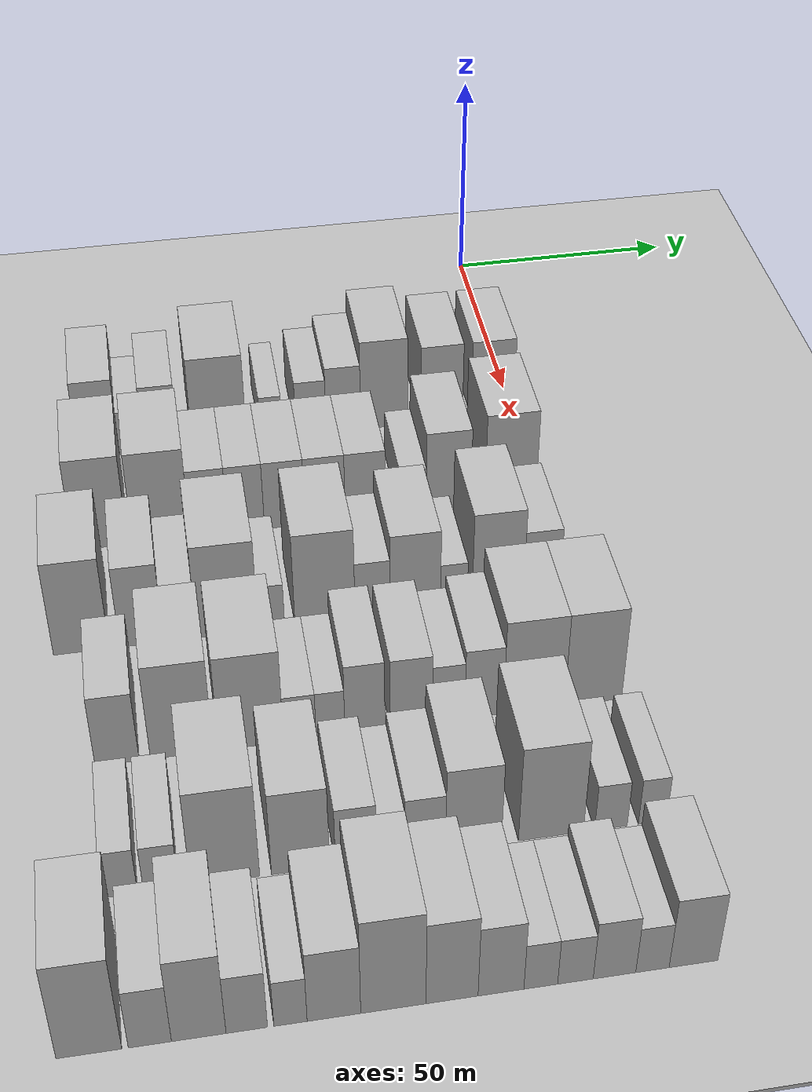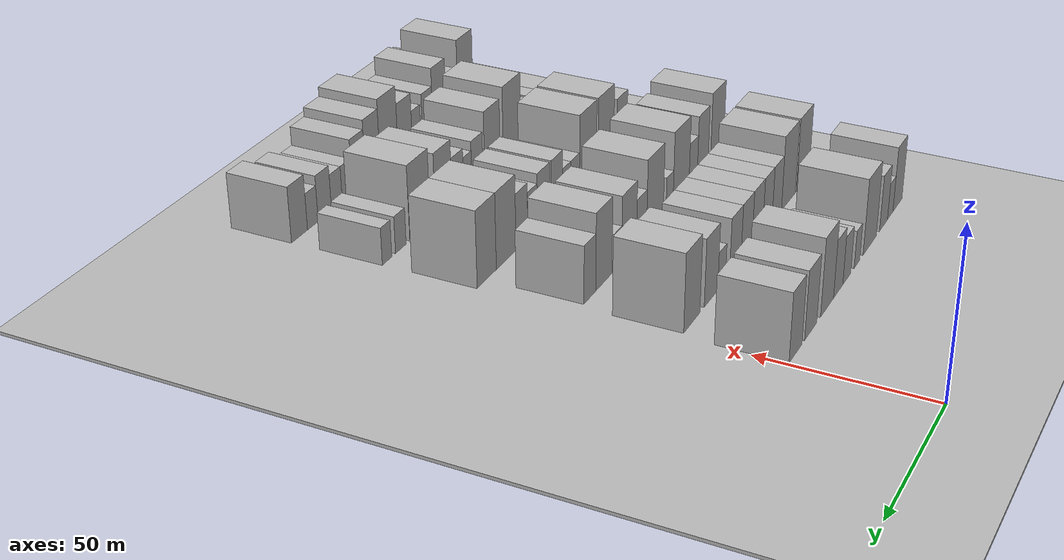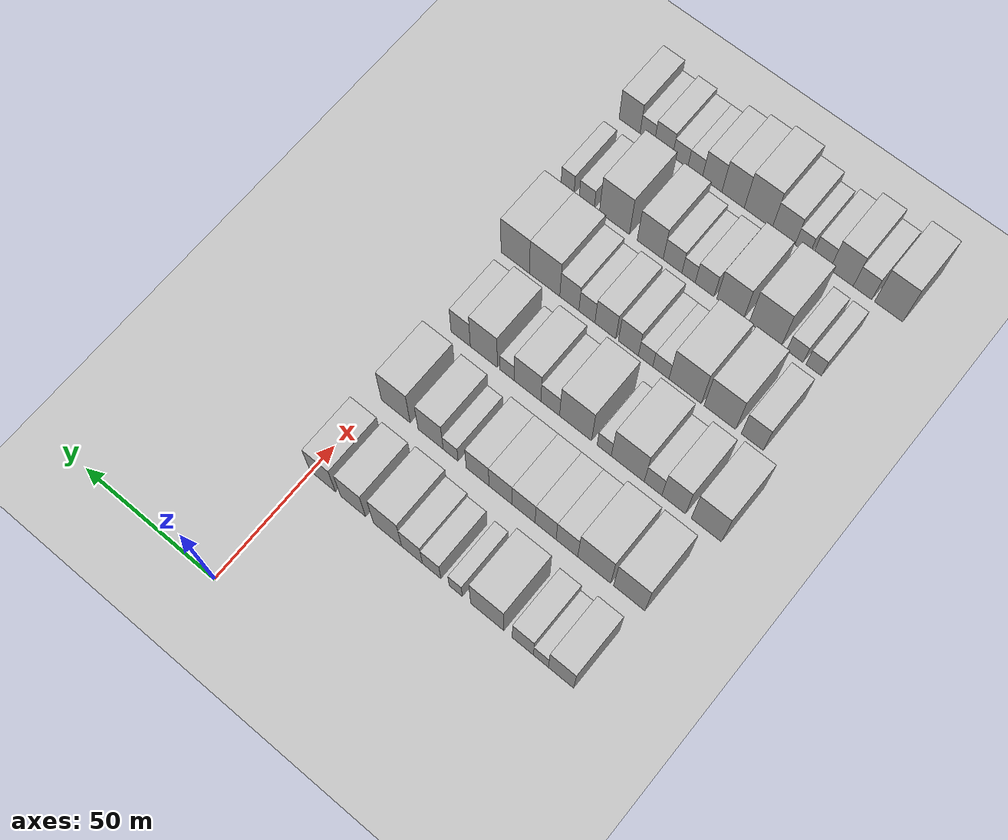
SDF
<sdf version="1.6">
 <world name="default">
  <include><name>ground_plane_1</name><uri>model://HANNAS_ground_plane</uri></include>
  <include>
   <name>ground_plane_2</name>
   <uri>model://HANNAS_ground_plane</uri>
   <pose>100 0 0  0 0 0</pose>
  </include>
  <model name="building_46">
   <static>1</static>
   <pose>50.0000 -91.5017 0 0.000000 0.000000 0.000000</pose>
   <link name="link">
    <pose>0 0 10.50 0 0 0</pose>
    <collision name="collision"><geometry><box><size>20.0000 8.8281 21.0000</size></box></geometry></collision>
    <visual name="visual">
     <cast_shadows>0</cast_shadows>
     <geometry><box><size>20.0000 8.8281 21.0000</size></box></geometry>
     <material>
      <script>
       <uri>model://HANNAS_wall/materials/scripts</uri>
       <uri>model://HANNAS_wall/materials/textures</uri>
       <name>vrc/HANNAS_wall</name>
      </script>
     </material>
    </visual>
   </link>
  </model>
  <model name="building_47">
   <static>1</static>
   <pose>50.0000 -84.4650 0 0.000000 0.000000 0.000000</pose>
   <link name="link">
    <pose>0 0 6.00 0 0 0</pose>
    <collision name="collision"><geometry><box><size>20.0000 5.2453 12.0000</size></box></geometry></collision>
    <visual name="visual">
     <cast_shadows>0</cast_shadows>
     <geometry><box><size>20.0000 5.2453 12.0000</size></box></geometry>
     <material>
      <script>
       <uri>model://HANNAS_wall/materials/scripts</uri>
       <uri>model://HANNAS_wall/materials/textures</uri>
       <name>vrc/HANNAS_wall</name>
      </script>
     </material>
    </visual>
   </link>
  </model>
  <model name="building_48">
   <static>1</static>
   <pose>50.0000 -78.1030 0 0.000000 0.000000 0.000000</pose>
   <link name="link">
    <pose>0 0 9.00 0 0 0</pose>
    <collision name="collision"><geometry><box><size>20.0000 7.4789 18.0000</size></box></geometry></collision>
    <visual name="visual">
     <cast_shadows>0</cast_shadows>
     <geometry><box><size>20.0000 7.4789 18.0000</size></box></geometry>
     <material>
      <script>
       <uri>model://HANNAS_wall/materials/scripts</uri>
       <uri>model://HANNAS_wall/materials/textures</uri>
       <name>vrc/HANNAS_wall</name>
      </script>
     </material>
    </visual>
   </link>
  </model>
  <model name="building_49">
   <static>1</static>
   <pose>50.0000 -65.4088 0 0.000000 0.000000 0.000000</pose>
   <link name="link">
    <pose>0 0 12.00 0 0 0</pose>
    <collision name="collision"><geometry><box><size>20.0000 11.9094 24.0000</size></box></geometry></collision>
    <visual name="visual">
     <cast_shadows>0</cast_shadows>
     <geometry><box><size>20.0000 11.9094 24.0000</size></box></geometry>
     <material>
      <script>
       <uri>model://HANNAS_wall/materials/scripts</uri>
       <uri>model://HANNAS_wall/materials/textures</uri>
       <name>vrc/HANNAS_wall</name>
      </script>
     </material>
    </visual>
   </link>
  </model>
  <model name="building_50">
   <static>1</static>
   <pose>50.0000 -54.0508 0 0.000000 0.000000 0.000000</pose>
   <link name="link">
    <pose>0 0 6.00 0 0 0</pose>
    <collision name="collision"><geometry><box><size>20.0000 4.8067 12.0000</size></box></geometry></collision>
    <visual name="visual">
     <cast_shadows>0</cast_shadows>
     <geometry><box><size>20.0000 4.8067 12.0000</size></box></geometry>
     <material>
      <script>
       <uri>model://HANNAS_wall/materials/scripts</uri>
       <uri>model://HANNAS_wall/materials/textures</uri>
       <name>vrc/HANNAS_wall</name>
      </script>
     </material>
    </visual>
   </link>
  </model>
  <model name="building_51">
   <static>1</static>
   <pose>50.0000 -45.2956 0 0.000000 0.000000 0.000000</pose>
   <link name="link">
    <pose>0 0 7.50 0 0 0</pose>
    <collision name="collision"><geometry><box><size>20.0000 6.7038 15.0000</size></box></geometry></collision>
    <visual name="visual">
     <cast_shadows>0</cast_shadows>
     <geometry><box><size>20.0000 6.7038 15.0000</size></box></geometry>
     <material>
      <script>
       <uri>model://HANNAS_wall/materials/scripts</uri>
       <uri>model://HANNAS_wall/materials/textures</uri>
       <name>vrc/HANNAS_wall</name>
      </script>
     </material>
    </visual>
   </link>
  </model>
  <model name="building_52">
   <static>1</static>
   <pose>50.0000 -38.1109 0 0.000000 0.000000 0.000000</pose>
   <link name="link">
    <pose>0 0 9.00 0 0 0</pose>
    <collision name="collision"><geometry><box><size>20.0000 7.6656 18.0000</size></box></geometry></collision>
    <visual name="visual">
     <cast_shadows>0</cast_shadows>
     <geometry><box><size>20.0000 7.6656 18.0000</size></box></geometry>
     <material>
      <script>
       <uri>model://HANNAS_wall/materials/scripts</uri>
       <uri>model://HANNAS_wall/materials/textures</uri>
       <name>vrc/HANNAS_wall</name>
      </script>
     </material>
    </visual>
   </link>
  </model>
  <model name="building_53">
   <static>1</static>
   <pose>50.0000 -29.0440 0 0.000000 0.000000 0.000000</pose>
   <link name="link">
    <pose>0 0 12.00 0 0 0</pose>
    <collision name="collision"><geometry><box><size>20.0000 10.4682 24.0000</size></box></geometry></collision>
    <visual name="visual">
     <cast_shadows>0</cast_shadows>
     <geometry><box><size>20.0000 10.4682 24.0000</size></box></geometry>
     <material>
      <script>
       <uri>model://HANNAS_wall/materials/scripts</uri>
       <uri>model://HANNAS_wall/materials/textures</uri>
       <name>vrc/HANNAS_wall</name>
      </script>
     </material>
    </visual>
   </link>
  </model>
  <model name="building_54">
   <static>1</static>
   <pose>50.0000 -16.1434 0 0.000000 0.000000 0.000000</pose>
   <link name="link">
    <pose>0 0 10.50 0 0 0</pose>
    <collision name="collision"><geometry><box><size>20.0000 9.3330 21.0000</size></box></geometry></collision>
    <visual name="visual">
     <cast_shadows>0</cast_shadows>
     <geometry><box><size>20.0000 9.3330 21.0000</size></box></geometry>
     <material>
      <script>
       <uri>model://HANNAS_wall/materials/scripts</uri>
       <uri>model://HANNAS_wall/materials/textures</uri>
       <name>vrc/HANNAS_wall</name>
      </script>
     </material>
    </visual>
   </link>
  </model>
  <model name="building_55">
   <static>1</static>
   <pose>50.0000 -4.6603 0 0.000000 0.000000 0.000000</pose>
   <link name="link">
    <pose>0 0 10.50 0 0 0</pose>
    <collision name="collision"><geometry><box><size>20.0000 9.6333 21.0000</size></box></geometry></collision>
    <visual name="visual">
     <cast_shadows>0</cast_shadows>
     <geometry><box><size>20.0000 9.6333 21.0000</size></box></geometry>
     <material>
      <script>
       <uri>model://HANNAS_wall/materials/scripts</uri>
       <uri>model://HANNAS_wall/materials/textures</uri>
       <name>vrc/HANNAS_wall</name>
      </script>
     </material>
    </visual>
   </link>
  </model>
  <model name="building_159">
   <static>1</static>
   <pose>79.0000 -92.3467 0 0.000000 0.000000 0.000000</pose>
   <link name="link">
    <pose>0 0 12.00 0 0 0</pose>
    <collision name="collision"><geometry><box><size>20.0000 11.0734 24.0000</size></box></geometry></collision>
    <visual name="visual">
     <cast_shadows>0</cast_shadows>
     <geometry><box><size>20.0000 11.0734 24.0000</size></box></geometry>
     <material>
      <script>
       <uri>model://HANNAS_wall/materials/scripts</uri>
       <uri>model://HANNAS_wall/materials/textures</uri>
       <name>vrc/HANNAS_wall</name>
      </script>
     </material>
    </visual>
   </link>
  </model>
  <model name="building_160">
   <static>1</static>
   <pose>79.0000 -79.9539 0 0.000000 0.000000 0.000000</pose>
   <link name="link">
    <pose>0 0 12.00 0 0 0</pose>
    <collision name="collision"><geometry><box><size>20.0000 11.7122 24.0000</size></box></geometry></collision>
    <visual name="visual">
     <cast_shadows>0</cast_shadows>
     <geometry><box><size>20.0000 11.7122 24.0000</size></box></geometry>
     <material>
      <script>
       <uri>model://HANNAS_wall/materials/scripts</uri>
       <uri>model://HANNAS_wall/materials/textures</uri>
       <name>vrc/HANNAS_wall</name>
      </script>
     </material>
    </visual>
   </link>
  </model>
  <model name="building_161">
   <static>1</static>
   <pose>79.0000 -70.2094 0 0.000000 0.000000 0.000000</pose>
   <link name="link">
    <pose>0 0 9.00 0 0 0</pose>
    <collision name="collision"><geometry><box><size>20.0000 7.7768 18.0000</size></box></geometry></collision>
    <visual name="visual">
     <cast_shadows>0</cast_shadows>
     <geometry><box><size>20.0000 7.7768 18.0000</size></box></geometry>
     <material>
      <script>
       <uri>model://HANNAS_wall/materials/scripts</uri>
       <uri>model://HANNAS_wall/materials/textures</uri>
       <name>vrc/HANNAS_wall</name>
      </script>
     </material>
    </visual>
   </link>
  </model>
  <model name="building_162">
   <static>1</static>
   <pose>79.0000 -62.5229 0 0.000000 0.000000 0.000000</pose>
   <link name="link">
    <pose>0 0 9.00 0 0 0</pose>
    <collision name="collision"><geometry><box><size>20.0000 7.5962 18.0000</size></box></geometry></collision>
    <visual name="visual">
     <cast_shadows>0</cast_shadows>
     <geometry><box><size>20.0000 7.5962 18.0000</size></box></geometry>
     <material>
      <script>
       <uri>model://HANNAS_wall/materials/scripts</uri>
       <uri>model://HANNAS_wall/materials/textures</uri>
       <name>vrc/HANNAS_wall</name>
      </script>
     </material>
    </visual>
   </link>
  </model>
  <model name="building_163">
   <static>1</static>
   <pose>79.0000 -54.5283 0 0.000000 0.000000 0.000000</pose>
   <link name="link">
    <pose>0 0 9.00 0 0 0</pose>
    <collision name="collision"><geometry><box><size>20.0000 8.3930 18.0000</size></box></geometry></collision>
    <visual name="visual">
     <cast_shadows>0</cast_shadows>
     <geometry><box><size>20.0000 8.3930 18.0000</size></box></geometry>
     <material>
      <script>
       <uri>model://HANNAS_wall/materials/scripts</uri>
       <uri>model://HANNAS_wall/materials/textures</uri>
       <name>vrc/HANNAS_wall</name>
      </script>
     </material>
    </visual>
   </link>
  </model>
  <model name="building_164">
   <static>1</static>
   <pose>79.0000 -46.1145 0 0.000000 0.000000 0.000000</pose>
   <link name="link">
    <pose>0 0 9.00 0 0 0</pose>
    <collision name="collision"><geometry><box><size>20.0000 8.4345 18.0000</size></box></geometry></collision>
    <visual name="visual">
     <cast_shadows>0</cast_shadows>
     <geometry><box><size>20.0000 8.4345 18.0000</size></box></geometry>
     <material>
      <script>
       <uri>model://HANNAS_wall/materials/scripts</uri>
       <uri>model://HANNAS_wall/materials/textures</uri>
       <name>vrc/HANNAS_wall</name>
      </script>
     </material>
    </visual>
   </link>
  </model>
  <model name="building_165">
   <static>1</static>
   <pose>79.0000 -37.6615 0 0.000000 0.000000 0.000000</pose>
   <link name="link">
    <pose>0 0 9.00 0 0 0</pose>
    <collision name="collision"><geometry><box><size>20.0000 8.4716 18.0000</size></box></geometry></collision>
    <visual name="visual">
     <cast_shadows>0</cast_shadows>
     <geometry><box><size>20.0000 8.4716 18.0000</size></box></geometry>
     <material>
      <script>
       <uri>model://HANNAS_wall/materials/scripts</uri>
       <uri>model://HANNAS_wall/materials/textures</uri>
       <name>vrc/HANNAS_wall</name>
      </script>
     </material>
    </visual>
   </link>
  </model>
  <model name="building_166">
   <static>1</static>
   <pose>79.0000 -27.6519 0 0.000000 0.000000 0.000000</pose>
   <link name="link">
    <pose>0 0 6.00 0 0 0</pose>
    <collision name="collision"><geometry><box><size>20.0000 5.5476 12.0000</size></box></geometry></collision>
    <visual name="visual">
     <cast_shadows>0</cast_shadows>
     <geometry><box><size>20.0000 5.5476 12.0000</size></box></geometry>
     <material>
      <script>
       <uri>model://HANNAS_wall/materials/scripts</uri>
       <uri>model://HANNAS_wall/materials/textures</uri>
       <name>vrc/HANNAS_wall</name>
      </script>
     </material>
    </visual>
   </link>
  </model>
  <model name="building_167">
   <static>1</static>
   <pose>79.0000 -20.1289 0 0.000000 0.000000 0.000000</pose>
   <link name="link">
    <pose>0 0 10.50 0 0 0</pose>
    <collision name="collision"><geometry><box><size>20.0000 9.4982 21.0000</size></box></geometry></collision>
    <visual name="visual">
     <cast_shadows>0</cast_shadows>
     <geometry><box><size>20.0000 9.4982 21.0000</size></box></geometry>
     <material>
      <script>
       <uri>model://HANNAS_wall/materials/scripts</uri>
       <uri>model://HANNAS_wall/materials/textures</uri>
       <name>vrc/HANNAS_wall</name>
      </script>
     </material>
    </visual>
   </link>
  </model>
  <model name="building_168">
   <static>1</static>
   <pose>79.0000 -6.9009 0 0.000000 0.000000 0.000000</pose>
   <link name="link">
    <pose>0 0 12.00 0 0 0</pose>
    <collision name="collision"><geometry><box><size>20.0000 10.9578 24.0000</size></box></geometry></collision>
    <visual name="visual">
     <cast_shadows>0</cast_shadows>
     <geometry><box><size>20.0000 10.9578 24.0000</size></box></geometry>
     <material>
      <script>
       <uri>model://HANNAS_wall/materials/scripts</uri>
       <uri>model://HANNAS_wall/materials/textures</uri>
       <name>vrc/HANNAS_wall</name>
      </script>
     </material>
    </visual>
   </link>
  </model>
  <model name="building_270">
   <static>1</static>
   <pose>108.0000 -97.1586 0 0.000000 0.000000 0.000000</pose>
   <link name="link">
    <pose>0 0 12.00 0 0 0</pose>
    <collision name="collision"><geometry><box><size>20.0000 10.6386 24.0000</size></box></geometry></collision>
    <visual name="visual">
     <cast_shadows>0</cast_shadows>
     <geometry><box><size>20.0000 10.6386 24.0000</size></box></geometry>
     <material>
      <script>
       <uri>model://HANNAS_wall/materials/scripts</uri>
       <uri>model://HANNAS_wall/materials/textures</uri>
       <name>vrc/HANNAS_wall</name>
      </script>
     </material>
    </visual>
   </link>
  </model>
  <model name="building_271">
   <static>1</static>
   <pose>108.0000 -85.6298 0 0.000000 0.000000 0.000000</pose>
   <link name="link">
    <pose>0 0 10.50 0 0 0</pose>
    <collision name="collision"><geometry><box><size>20.0000 8.4190 21.0000</size></box></geometry></collision>
    <visual name="visual">
     <cast_shadows>0</cast_shadows>
     <geometry><box><size>20.0000 8.4190 21.0000</size></box></geometry>
     <material>
      <script>
       <uri>model://HANNAS_wall/materials/scripts</uri>
       <uri>model://HANNAS_wall/materials/textures</uri>
       <name>vrc/HANNAS_wall</name>
      </script>
     </material>
    </visual>
   </link>
  </model>
  <model name="building_272">
   <static>1</static>
   <pose>108.0000 -78.2460 0 0.000000 0.000000 0.000000</pose>
   <link name="link">
    <pose>0 0 7.50 0 0 0</pose>
    <collision name="collision"><geometry><box><size>20.0000 6.3487 15.0000</size></box></geometry></collision>
    <visual name="visual">
     <cast_shadows>0</cast_shadows>
     <geometry><box><size>20.0000 6.3487 15.0000</size></box></geometry>
     <material>
      <script>
       <uri>model://HANNAS_wall/materials/scripts</uri>
       <uri>model://HANNAS_wall/materials/textures</uri>
       <name>vrc/HANNAS_wall</name>
      </script>
     </material>
    </visual>
   </link>
  </model>
  <model name="building_273">
   <static>1</static>
   <pose>108.0000 -69.1006 0 0.000000 0.000000 0.000000</pose>
   <link name="link">
    <pose>0 0 12.00 0 0 0</pose>
    <collision name="collision"><geometry><box><size>20.0000 11.9419 24.0000</size></box></geometry></collision>
    <visual name="visual">
     <cast_shadows>0</cast_shadows>
     <geometry><box><size>20.0000 11.9419 24.0000</size></box></geometry>
     <material>
      <script>
       <uri>model://HANNAS_wall/materials/scripts</uri>
       <uri>model://HANNAS_wall/materials/textures</uri>
       <name>vrc/HANNAS_wall</name>
      </script>
     </material>
    </visual>
   </link>
  </model>
  <model name="building_274">
   <static>1</static>
   <pose>108.0000 -60.5538 0 0.000000 0.000000 0.000000</pose>
   <link name="link">
    <pose>0 0 6.00 0 0 0</pose>
    <collision name="collision"><geometry><box><size>20.0000 5.1518 12.0000</size></box></geometry></collision>
    <visual name="visual">
     <cast_shadows>0</cast_shadows>
     <geometry><box><size>20.0000 5.1518 12.0000</size></box></geometry>
     <material>
      <script>
       <uri>model://HANNAS_wall/materials/scripts</uri>
       <uri>model://HANNAS_wall/materials/textures</uri>
       <name>vrc/HANNAS_wall</name>
      </script>
     </material>
    </visual>
   </link>
  </model>
  <model name="building_275">
   <static>1</static>
   <pose>108.0000 -50.0670 0 0.000000 0.000000 0.000000</pose>
   <link name="link">
    <pose>0 0 12.00 0 0 0</pose>
    <collision name="collision"><geometry><box><size>20.0000 11.8216 24.0000</size></box></geometry></collision>
    <visual name="visual">
     <cast_shadows>0</cast_shadows>
     <geometry><box><size>20.0000 11.8216 24.0000</size></box></geometry>
     <material>
      <script>
       <uri>model://HANNAS_wall/materials/scripts</uri>
       <uri>model://HANNAS_wall/materials/textures</uri>
       <name>vrc/HANNAS_wall</name>
      </script>
     </material>
    </visual>
   </link>
  </model>
  <model name="building_276">
   <static>1</static>
   <pose>108.0000 -40.6836 0 0.000000 0.000000 0.000000</pose>
   <link name="link">
    <pose>0 0 7.50 0 0 0</pose>
    <collision name="collision"><geometry><box><size>20.0000 6.9452 15.0000</size></box></geometry></collision>
    <visual name="visual">
     <cast_shadows>0</cast_shadows>
     <geometry><box><size>20.0000 6.9452 15.0000</size></box></geometry>
     <material>
      <script>
       <uri>model://HANNAS_wall/materials/scripts</uri>
       <uri>model://HANNAS_wall/materials/textures</uri>
       <name>vrc/HANNAS_wall</name>
      </script>
     </material>
    </visual>
   </link>
  </model>
  <model name="building_277">
   <static>1</static>
   <pose>108.0000 -32.2255 0 0.000000 0.000000 0.000000</pose>
   <link name="link">
    <pose>0 0 10.50 0 0 0</pose>
    <collision name="collision"><geometry><box><size>20.0000 9.9709 21.0000</size></box></geometry></collision>
    <visual name="visual">
     <cast_shadows>0</cast_shadows>
     <geometry><box><size>20.0000 9.9709 21.0000</size></box></geometry>
     <material>
      <script>
       <uri>model://HANNAS_wall/materials/scripts</uri>
       <uri>model://HANNAS_wall/materials/textures</uri>
       <name>vrc/HANNAS_wall</name>
      </script>
     </material>
    </visual>
   </link>
  </model>
  <model name="building_278">
   <static>1</static>
   <pose>108.0000 -24.5676 0 0.000000 0.000000 0.000000</pose>
   <link name="link">
    <pose>0 0 6.00 0 0 0</pose>
    <collision name="collision"><geometry><box><size>20.0000 5.3450 12.0000</size></box></geometry></collision>
    <visual name="visual">
     <cast_shadows>0</cast_shadows>
     <geometry><box><size>20.0000 5.3450 12.0000</size></box></geometry>
     <material>
      <script>
       <uri>model://HANNAS_wall/materials/scripts</uri>
       <uri>model://HANNAS_wall/materials/textures</uri>
       <name>vrc/HANNAS_wall</name>
      </script>
     </material>
    </visual>
   </link>
  </model>
  <model name="building_279">
   <static>1</static>
   <pose>108.0000 -15.7495 0 0.000000 0.000000 0.000000</pose>
   <link name="link">
    <pose>0 0 12.00 0 0 0</pose>
    <collision name="collision"><geometry><box><size>20.0000 10.2911 24.0000</size></box></geometry></collision>
    <visual name="visual">
     <cast_shadows>0</cast_shadows>
     <geometry><box><size>20.0000 10.2911 24.0000</size></box></geometry>
     <material>
      <script>
       <uri>model://HANNAS_wall/materials/scripts</uri>
       <uri>model://HANNAS_wall/materials/textures</uri>
       <name>vrc/HANNAS_wall</name>
      </script>
     </material>
    </visual>
   </link>
  </model>
  <model name="building_280">
   <static>1</static>
   <pose>108.0000 -6.9151 0 0.000000 0.000000 0.000000</pose>
   <link name="link">
    <pose>0 0 9.00 0 0 0</pose>
    <collision name="collision"><geometry><box><size>20.0000 7.3779 18.0000</size></box></geometry></collision>
    <visual name="visual">
     <cast_shadows>0</cast_shadows>
     <geometry><box><size>20.0000 7.3779 18.0000</size></box></geometry>
     <material>
      <script>
       <uri>model://HANNAS_wall/materials/scripts</uri>
       <uri>model://HANNAS_wall/materials/textures</uri>
       <name>vrc/HANNAS_wall</name>
      </script>
     </material>
    </visual>
   </link>
  </model>
  <model name="building_377">
   <static>1</static>
   <pose>137.0000 -91.7214 0 0.000000 0.000000 0.000000</pose>
   <link name="link">
    <pose>0 0 9.00 0 0 0</pose>
    <collision name="collision"><geometry><box><size>20.0000 7.8928 18.0000</size></box></geometry></collision>
    <visual name="visual">
     <cast_shadows>0</cast_shadows>
     <geometry><box><size>20.0000 7.8928 18.0000</size></box></geometry>
     <material>
      <script>
       <uri>model://HANNAS_wall/materials/scripts</uri>
       <uri>model://HANNAS_wall/materials/textures</uri>
       <name>vrc/HANNAS_wall</name>
      </script>
     </material>
    </visual>
   </link>
  </model>
  <model name="building_378">
   <static>1</static>
   <pose>137.0000 -80.0980 0 0.000000 0.000000 0.000000</pose>
   <link name="link">
    <pose>0 0 12.00 0 0 0</pose>
    <collision name="collision"><geometry><box><size>20.0000 11.3541 24.0000</size></box></geometry></collision>
    <visual name="visual">
     <cast_shadows>0</cast_shadows>
     <geometry><box><size>20.0000 11.3541 24.0000</size></box></geometry>
     <material>
      <script>
       <uri>model://HANNAS_wall/materials/scripts</uri>
       <uri>model://HANNAS_wall/materials/textures</uri>
       <name>vrc/HANNAS_wall</name>
      </script>
     </material>
    </visual>
   </link>
  </model>
  <model name="building_379">
   <static>1</static>
   <pose>137.0000 -67.5205 0 0.000000 0.000000 0.000000</pose>
   <link name="link">
    <pose>0 0 12.00 0 0 0</pose>
    <collision name="collision"><geometry><box><size>20.0000 11.8009 24.0000</size></box></geometry></collision>
    <visual name="visual">
     <cast_shadows>0</cast_shadows>
     <geometry><box><size>20.0000 11.8009 24.0000</size></box></geometry>
     <material>
      <script>
       <uri>model://HANNAS_wall/materials/scripts</uri>
       <uri>model://HANNAS_wall/materials/textures</uri>
       <name>vrc/HANNAS_wall</name>
      </script>
     </material>
    </visual>
   </link>
  </model>
  <model name="building_380">
   <static>1</static>
   <pose>137.0000 -58.6394 0 0.000000 0.000000 0.000000</pose>
   <link name="link">
    <pose>0 0 6.00 0 0 0</pose>
    <collision name="collision"><geometry><box><size>20.0000 5.9612 12.0000</size></box></geometry></collision>
    <visual name="visual">
     <cast_shadows>0</cast_shadows>
     <geometry><box><size>20.0000 5.9612 12.0000</size></box></geometry>
     <material>
      <script>
       <uri>model://HANNAS_wall/materials/scripts</uri>
       <uri>model://HANNAS_wall/materials/textures</uri>
       <name>vrc/HANNAS_wall</name>
      </script>
     </material>
    </visual>
   </link>
  </model>
  <model name="building_381">
   <static>1</static>
   <pose>137.0000 -53.0052 0 0.000000 0.000000 0.000000</pose>
   <link name="link">
    <pose>0 0 6.00 0 0 0</pose>
    <collision name="collision"><geometry><box><size>20.0000 5.3072 12.0000</size></box></geometry></collision>
    <visual name="visual">
     <cast_shadows>0</cast_shadows>
     <geometry><box><size>20.0000 5.3072 12.0000</size></box></geometry>
     <material>
      <script>
       <uri>model://HANNAS_wall/materials/scripts</uri>
       <uri>model://HANNAS_wall/materials/textures</uri>
       <name>vrc/HANNAS_wall</name>
      </script>
     </material>
    </visual>
   </link>
  </model>
  <model name="building_382">
   <static>1</static>
   <pose>137.0000 -46.6468 0 0.000000 0.000000 0.000000</pose>
   <link name="link">
    <pose>0 0 9.00 0 0 0</pose>
    <collision name="collision"><geometry><box><size>20.0000 7.4098 18.0000</size></box></geometry></collision>
    <visual name="visual">
     <cast_shadows>0</cast_shadows>
     <geometry><box><size>20.0000 7.4098 18.0000</size></box></geometry>
     <material>
      <script>
       <uri>model://HANNAS_wall/materials/scripts</uri>
       <uri>model://HANNAS_wall/materials/textures</uri>
       <name>vrc/HANNAS_wall</name>
      </script>
     </material>
    </visual>
   </link>
  </model>
  <model name="building_383">
   <static>1</static>
   <pose>137.0000 -38.0358 0 0.000000 0.000000 0.000000</pose>
   <link name="link">
    <pose>0 0 9.00 0 0 0</pose>
    <collision name="collision"><geometry><box><size>20.0000 7.8122 18.0000</size></box></geometry></collision>
    <visual name="visual">
     <cast_shadows>0</cast_shadows>
     <geometry><box><size>20.0000 7.8122 18.0000</size></box></geometry>
     <material>
      <script>
       <uri>model://HANNAS_wall/materials/scripts</uri>
       <uri>model://HANNAS_wall/materials/textures</uri>
       <name>vrc/HANNAS_wall</name>
      </script>
     </material>
    </visual>
   </link>
  </model>
  <model name="building_384">
   <static>1</static>
   <pose>137.0000 -31.1125 0 0.000000 0.000000 0.000000</pose>
   <link name="link">
    <pose>0 0 7.50 0 0 0</pose>
    <collision name="collision"><geometry><box><size>20.0000 6.0345 15.0000</size></box></geometry></collision>
    <visual name="visual">
     <cast_shadows>0</cast_shadows>
     <geometry><box><size>20.0000 6.0345 15.0000</size></box></geometry>
     <material>
      <script>
       <uri>model://HANNAS_wall/materials/scripts</uri>
       <uri>model://HANNAS_wall/materials/textures</uri>
       <name>vrc/HANNAS_wall</name>
      </script>
     </material>
    </visual>
   </link>
  </model>
  <model name="building_385">
   <static>1</static>
   <pose>137.0000 -24.4626 0 0.000000 0.000000 0.000000</pose>
   <link name="link">
    <pose>0 0 9.00 0 0 0</pose>
    <collision name="collision"><geometry><box><size>20.0000 7.2653 18.0000</size></box></geometry></collision>
    <visual name="visual">
     <cast_shadows>0</cast_shadows>
     <geometry><box><size>20.0000 7.2653 18.0000</size></box></geometry>
     <material>
      <script>
       <uri>model://HANNAS_wall/materials/scripts</uri>
       <uri>model://HANNAS_wall/materials/textures</uri>
       <name>vrc/HANNAS_wall</name>
      </script>
     </material>
    </visual>
   </link>
  </model>
  <model name="building_386">
   <static>1</static>
   <pose>137.0000 -15.0146 0 0.000000 0.000000 0.000000</pose>
   <link name="link">
    <pose>0 0 12.00 0 0 0</pose>
    <collision name="collision"><geometry><box><size>20.0000 11.6309 24.0000</size></box></geometry></collision>
    <visual name="visual">
     <cast_shadows>0</cast_shadows>
     <geometry><box><size>20.0000 11.6309 24.0000</size></box></geometry>
     <material>
      <script>
       <uri>model://HANNAS_wall/materials/scripts</uri>
       <uri>model://HANNAS_wall/materials/textures</uri>
       <name>vrc/HANNAS_wall</name>
      </script>
     </material>
    </visual>
   </link>
  </model>
  <model name="building_387">
   <static>1</static>
   <pose>137.0000 -3.7207 0 0.000000 0.000000 0.000000</pose>
   <link name="link">
    <pose>0 0 12.00 0 0 0</pose>
    <collision name="collision"><geometry><box><size>20.0000 10.9569 24.0000</size></box></geometry></collision>
    <visual name="visual">
     <cast_shadows>0</cast_shadows>
     <geometry><box><size>20.0000 10.9569 24.0000</size></box></geometry>
     <material>
      <script>
       <uri>model://HANNAS_wall/materials/scripts</uri>
       <uri>model://HANNAS_wall/materials/textures</uri>
       <name>vrc/HANNAS_wall</name>
      </script>
     </material>
    </visual>
   </link>
  </model>
  <model name="building_488">
   <static>1</static>
   <pose>166.0000 -92.4899 0 0.000000 0.000000 0.000000</pose>
   <link name="link">
    <pose>0 0 6.00 0 0 0</pose>
    <collision name="collision"><geometry><box><size>20.0000 5.6054 12.0000</size></box></geometry></collision>
    <visual name="visual">
     <cast_shadows>0</cast_shadows>
     <geometry><box><size>20.0000 5.6054 12.0000</size></box></geometry>
     <material>
      <script>
       <uri>model://HANNAS_wall/materials/scripts</uri>
       <uri>model://HANNAS_wall/materials/textures</uri>
       <name>vrc/HANNAS_wall</name>
      </script>
     </material>
    </visual>
   </link>
  </model>
  <model name="building_489">
   <static>1</static>
   <pose>166.0000 -85.7406 0 0.000000 0.000000 0.000000</pose>
   <link name="link">
    <pose>0 0 6.00 0 0 0</pose>
    <collision name="collision"><geometry><box><size>20.0000 5.8932 12.0000</size></box></geometry></collision>
    <visual name="visual">
     <cast_shadows>0</cast_shadows>
     <geometry><box><size>20.0000 5.8932 12.0000</size></box></geometry>
     <material>
      <script>
       <uri>model://HANNAS_wall/materials/scripts</uri>
       <uri>model://HANNAS_wall/materials/textures</uri>
       <name>vrc/HANNAS_wall</name>
      </script>
     </material>
    </visual>
   </link>
  </model>
  <model name="building_490">
   <static>1</static>
   <pose>166.0000 -74.9487 0 0.000000 0.000000 0.000000</pose>
   <link name="link">
    <pose>0 0 12.00 0 0 0</pose>
    <collision name="collision"><geometry><box><size>20.0000 11.6905 24.0000</size></box></geometry></collision>
    <visual name="visual">
     <cast_shadows>0</cast_shadows>
     <geometry><box><size>20.0000 11.6905 24.0000</size></box></geometry>
     <material>
      <script>
       <uri>model://HANNAS_wall/materials/scripts</uri>
       <uri>model://HANNAS_wall/materials/textures</uri>
       <name>vrc/HANNAS_wall</name>
      </script>
     </material>
    </visual>
   </link>
  </model>
  <model name="building_491">
   <static>1</static>
   <pose>166.0000 -62.1339 0 0.000000 0.000000 0.000000</pose>
   <link name="link">
    <pose>0 0 10.50 0 0 0</pose>
    <collision name="collision"><geometry><box><size>20.0000 9.9391 21.0000</size></box></geometry></collision>
    <visual name="visual">
     <cast_shadows>0</cast_shadows>
     <geometry><box><size>20.0000 9.9391 21.0000</size></box></geometry>
     <material>
      <script>
       <uri>model://HANNAS_wall/materials/scripts</uri>
       <uri>model://HANNAS_wall/materials/textures</uri>
       <name>vrc/HANNAS_wall</name>
      </script>
     </material>
    </visual>
   </link>
  </model>
  <model name="building_492">
   <static>1</static>
   <pose>166.0000 -52.6520 0 0.000000 0.000000 0.000000</pose>
   <link name="link">
    <pose>0 0 7.50 0 0 0</pose>
    <collision name="collision"><geometry><box><size>20.0000 7.0245 15.0000</size></box></geometry></collision>
    <visual name="visual">
     <cast_shadows>0</cast_shadows>
     <geometry><box><size>20.0000 7.0245 15.0000</size></box></geometry>
     <material>
      <script>
       <uri>model://HANNAS_wall/materials/scripts</uri>
       <uri>model://HANNAS_wall/materials/textures</uri>
       <name>vrc/HANNAS_wall</name>
      </script>
     </material>
    </visual>
   </link>
  </model>
  <model name="building_493">
   <static>1</static>
   <pose>166.0000 -46.6561 0 0.000000 0.000000 0.000000</pose>
   <link name="link">
    <pose>0 0 6.00 0 0 0</pose>
    <collision name="collision"><geometry><box><size>20.0000 4.9674 12.0000</size></box></geometry></collision>
    <visual name="visual">
     <cast_shadows>0</cast_shadows>
     <geometry><box><size>20.0000 4.9674 12.0000</size></box></geometry>
     <material>
      <script>
       <uri>model://HANNAS_wall/materials/scripts</uri>
       <uri>model://HANNAS_wall/materials/textures</uri>
       <name>vrc/HANNAS_wall</name>
      </script>
     </material>
    </visual>
   </link>
  </model>
  <model name="building_494">
   <static>1</static>
   <pose>166.0000 -40.6521 0 0.000000 0.000000 0.000000</pose>
   <link name="link">
    <pose>0 0 7.50 0 0 0</pose>
    <collision name="collision"><geometry><box><size>20.0000 7.0406 15.0000</size></box></geometry></collision>
    <visual name="visual">
     <cast_shadows>0</cast_shadows>
     <geometry><box><size>20.0000 7.0406 15.0000</size></box></geometry>
     <material>
      <script>
       <uri>model://HANNAS_wall/materials/scripts</uri>
       <uri>model://HANNAS_wall/materials/textures</uri>
       <name>vrc/HANNAS_wall</name>
      </script>
     </material>
    </visual>
   </link>
  </model>
  <model name="building_495">
   <static>1</static>
   <pose>166.0000 -32.2301 0 0.000000 0.000000 0.000000</pose>
   <link name="link">
    <pose>0 0 10.50 0 0 0</pose>
    <collision name="collision"><geometry><box><size>20.0000 9.8034 21.0000</size></box></geometry></collision>
    <visual name="visual">
     <cast_shadows>0</cast_shadows>
     <geometry><box><size>20.0000 9.8034 21.0000</size></box></geometry>
     <material>
      <script>
       <uri>model://HANNAS_wall/materials/scripts</uri>
       <uri>model://HANNAS_wall/materials/textures</uri>
       <name>vrc/HANNAS_wall</name>
      </script>
     </material>
    </visual>
   </link>
  </model>
  <model name="building_496">
   <static>1</static>
   <pose>166.0000 -18.5681 0 0.000000 0.000000 0.000000</pose>
   <link name="link">
    <pose>0 0 12.00 0 0 0</pose>
    <collision name="collision"><geometry><box><size>20.0000 11.5207 24.0000</size></box></geometry></collision>
    <visual name="visual">
     <cast_shadows>0</cast_shadows>
     <geometry><box><size>20.0000 11.5207 24.0000</size></box></geometry>
     <material>
      <script>
       <uri>model://HANNAS_wall/materials/scripts</uri>
       <uri>model://HANNAS_wall/materials/textures</uri>
       <name>vrc/HANNAS_wall</name>
      </script>
     </material>
    </visual>
   </link>
  </model>
  <model name="building_497">
   <static>1</static>
   <pose>166.0000 -7.8948 0 0.000000 0.000000 0.000000</pose>
   <link name="link">
    <pose>0 0 6.00 0 0 0</pose>
    <collision name="collision"><geometry><box><size>20.0000 5.8259 12.0000</size></box></geometry></collision>
    <visual name="visual">
     <cast_shadows>0</cast_shadows>
     <geometry><box><size>20.0000 5.8259 12.0000</size></box></geometry>
     <material>
      <script>
       <uri>model://HANNAS_wall/materials/scripts</uri>
       <uri>model://HANNAS_wall/materials/textures</uri>
       <name>vrc/HANNAS_wall</name>
      </script>
     </material>
    </visual>
   </link>
  </model>
  <model name="building_498">
   <static>1</static>
   <pose>166.0000 -0.4496 0 0.000000 0.000000 0.000000</pose>
   <link name="link">
    <pose>0 0 6.00 0 0 0</pose>
    <collision name="collision"><geometry><box><size>20.0000 5.0645 12.0000</size></box></geometry></collision>
    <visual name="visual">
     <cast_shadows>0</cast_shadows>
     <geometry><box><size>20.0000 5.0645 12.0000</size></box></geometry>
     <material>
      <script>
       <uri>model://HANNAS_wall/materials/scripts</uri>
       <uri>model://HANNAS_wall/materials/textures</uri>
       <name>vrc/HANNAS_wall</name>
      </script>
     </material>
    </visual>
   </link>
  </model>
  <model name="building_609">
   <static>1</static>
   <pose>195.0000 -98.8348 0 0.000000 0.000000 0.000000</pose>
   <link name="link">
    <pose>0 0 12.00 0 0 0</pose>
    <collision name="collision"><geometry><box><size>20.0000 10.1397 24.0000</size></box></geometry></collision>
    <visual name="visual">
     <cast_shadows>0</cast_shadows>
     <geometry><box><size>20.0000 10.1397 24.0000</size></box></geometry>
     <material>
      <script>
       <uri>model://HANNAS_wall/materials/scripts</uri>
       <uri>model://HANNAS_wall/materials/textures</uri>
       <name>vrc/HANNAS_wall</name>
      </script>
     </material>
    </visual>
   </link>
  </model>
  <model name="building_610">
   <static>1</static>
   <pose>195.0000 -89.4105 0 0.000000 0.000000 0.000000</pose>
   <link name="link">
    <pose>0 0 7.50 0 0 0</pose>
    <collision name="collision"><geometry><box><size>20.0000 6.7090 15.0000</size></box></geometry></collision>
    <visual name="visual">
     <cast_shadows>0</cast_shadows>
     <geometry><box><size>20.0000 6.7090 15.0000</size></box></geometry>
     <material>
      <script>
       <uri>model://HANNAS_wall/materials/scripts</uri>
       <uri>model://HANNAS_wall/materials/textures</uri>
       <name>vrc/HANNAS_wall</name>
      </script>
     </material>
    </visual>
   </link>
  </model>
  <model name="building_611">
   <static>1</static>
   <pose>195.0000 -81.7936 0 0.000000 0.000000 0.000000</pose>
   <link name="link">
    <pose>0 0 10.50 0 0 0</pose>
    <collision name="collision"><geometry><box><size>20.0000 8.5247 21.0000</size></box></geometry></collision>
    <visual name="visual">
     <cast_shadows>0</cast_shadows>
     <geometry><box><size>20.0000 8.5247 21.0000</size></box></geometry>
     <material>
      <script>
       <uri>model://HANNAS_wall/materials/scripts</uri>
       <uri>model://HANNAS_wall/materials/textures</uri>
       <name>vrc/HANNAS_wall</name>
      </script>
     </material>
    </visual>
   </link>
  </model>
  <model name="building_612">
   <static>1</static>
   <pose>195.0000 -74.2674 0 0.000000 0.000000 0.000000</pose>
   <link name="link">
    <pose>0 0 7.50 0 0 0</pose>
    <collision name="collision"><geometry><box><size>20.0000 6.5277 15.0000</size></box></geometry></collision>
    <visual name="visual">
     <cast_shadows>0</cast_shadows>
     <geometry><box><size>20.0000 6.5277 15.0000</size></box></geometry>
     <material>
      <script>
       <uri>model://HANNAS_wall/materials/scripts</uri>
       <uri>model://HANNAS_wall/materials/textures</uri>
       <name>vrc/HANNAS_wall</name>
      </script>
     </material>
    </visual>
   </link>
  </model>
  <model name="building_613">
   <static>1</static>
   <pose>195.0000 -67.3701 0 0.000000 0.000000 0.000000</pose>
   <link name="link">
    <pose>0 0 6.00 0 0 0</pose>
    <collision name="collision"><geometry><box><size>20.0000 5.2669 12.0000</size></box></geometry></collision>
    <visual name="visual">
     <cast_shadows>0</cast_shadows>
     <geometry><box><size>20.0000 5.2669 12.0000</size></box></geometry>
     <material>
      <script>
       <uri>model://HANNAS_wall/materials/scripts</uri>
       <uri>model://HANNAS_wall/materials/textures</uri>
       <name>vrc/HANNAS_wall</name>
      </script>
     </material>
    </visual>
   </link>
  </model>
  <model name="building_614">
   <static>1</static>
   <pose>195.0000 -60.4710 0 0.000000 0.000000 0.000000</pose>
   <link name="link">
    <pose>0 0 9.00 0 0 0</pose>
    <collision name="collision"><geometry><box><size>20.0000 8.5313 18.0000</size></box></geometry></collision>
    <visual name="visual">
     <cast_shadows>0</cast_shadows>
     <geometry><box><size>20.0000 8.5313 18.0000</size></box></geometry>
     <material>
      <script>
       <uri>model://HANNAS_wall/materials/scripts</uri>
       <uri>model://HANNAS_wall/materials/textures</uri>
       <name>vrc/HANNAS_wall</name>
      </script>
     </material>
    </visual>
   </link>
  </model>
  <model name="building_615">
   <static>1</static>
   <pose>195.0000 -50.9727 0 0.000000 0.000000 0.000000</pose>
   <link name="link">
    <pose>0 0 12.00 0 0 0</pose>
    <collision name="collision"><geometry><box><size>20.0000 10.4654 24.0000</size></box></geometry></collision>
    <visual name="visual">
     <cast_shadows>0</cast_shadows>
     <geometry><box><size>20.0000 10.4654 24.0000</size></box></geometry>
     <material>
      <script>
       <uri>model://HANNAS_wall/materials/scripts</uri>
       <uri>model://HANNAS_wall/materials/textures</uri>
       <name>vrc/HANNAS_wall</name>
      </script>
     </material>
    </visual>
   </link>
  </model>
  <model name="building_616">
   <static>1</static>
   <pose>195.0000 -41.5174 0 0.000000 0.000000 0.000000</pose>
   <link name="link">
    <pose>0 0 10.50 0 0 0</pose>
    <collision name="collision"><geometry><box><size>20.0000 8.4451 21.0000</size></box></geometry></collision>
    <visual name="visual">
     <cast_shadows>0</cast_shadows>
     <geometry><box><size>20.0000 8.4451 21.0000</size></box></geometry>
     <material>
      <script>
       <uri>model://HANNAS_wall/materials/scripts</uri>
       <uri>model://HANNAS_wall/materials/textures</uri>
       <name>vrc/HANNAS_wall</name>
      </script>
     </material>
    </visual>
   </link>
  </model>
  <model name="building_617">
   <static>1</static>
   <pose>195.0000 -33.5594 0 0.000000 0.000000 0.000000</pose>
   <link name="link">
    <pose>0 0 9.00 0 0 0</pose>
    <collision name="collision"><geometry><box><size>20.0000 7.4709 18.0000</size></box></geometry></collision>
    <visual name="visual">
     <cast_shadows>0</cast_shadows>
     <geometry><box><size>20.0000 7.4709 18.0000</size></box></geometry>
     <material>
      <script>
       <uri>model://HANNAS_wall/materials/scripts</uri>
       <uri>model://HANNAS_wall/materials/textures</uri>
       <name>vrc/HANNAS_wall</name>
      </script>
     </material>
    </visual>
   </link>
  </model>
  <model name="building_618">
   <static>1</static>
   <pose>195.0000 -27.0497 0 0.000000 0.000000 0.000000</pose>
   <link name="link">
    <pose>0 0 6.00 0 0 0</pose>
    <collision name="collision"><geometry><box><size>20.0000 5.5485 12.0000</size></box></geometry></collision>
    <visual name="visual">
     <cast_shadows>0</cast_shadows>
     <geometry><box><size>20.0000 5.5485 12.0000</size></box></geometry>
     <material>
      <script>
       <uri>model://HANNAS_wall/materials/scripts</uri>
       <uri>model://HANNAS_wall/materials/textures</uri>
       <name>vrc/HANNAS_wall</name>
      </script>
     </material>
    </visual>
   </link>
  </model>
  <model name="building_619">
   <static>1</static>
   <pose>195.0000 -21.3449 0 0.000000 0.000000 0.000000</pose>
   <link name="link">
    <pose>0 0 6.00 0 0 0</pose>
    <collision name="collision"><geometry><box><size>20.0000 5.8612 12.0000</size></box></geometry></collision>
    <visual name="visual">
     <cast_shadows>0</cast_shadows>
     <geometry><box><size>20.0000 5.8612 12.0000</size></box></geometry>
     <material>
      <script>
       <uri>model://HANNAS_wall/materials/scripts</uri>
       <uri>model://HANNAS_wall/materials/textures</uri>
       <name>vrc/HANNAS_wall</name>
      </script>
     </material>
    </visual>
   </link>
  </model>
  <model name="building_620">
   <static>1</static>
   <pose>195.0000 -14.8853 0 0.000000 0.000000 0.000000</pose>
   <link name="link">
    <pose>0 0 7.50 0 0 0</pose>
    <collision name="collision"><geometry><box><size>20.0000 7.0579 15.0000</size></box></geometry></collision>
    <visual name="visual">
     <cast_shadows>0</cast_shadows>
     <geometry><box><size>20.0000 7.0579 15.0000</size></box></geometry>
     <material>
      <script>
       <uri>model://HANNAS_wall/materials/scripts</uri>
       <uri>model://HANNAS_wall/materials/textures</uri>
       <name>vrc/HANNAS_wall</name>
      </script>
     </material>
    </visual>
   </link>
  </model>
  <model name="building_621">
   <static>1</static>
   <pose>195.0000 -8.5762 0 0.000000 0.000000 0.000000</pose>
   <link name="link">
    <pose>0 0 6.00 0 0 0</pose>
    <collision name="collision"><geometry><box><size>20.0000 5.5605 12.0000</size></box></geometry></collision>
    <visual name="visual">
     <cast_shadows>0</cast_shadows>
     <geometry><box><size>20.0000 5.5605 12.0000</size></box></geometry>
     <material>
      <script>
       <uri>model://HANNAS_wall/materials/scripts</uri>
       <uri>model://HANNAS_wall/materials/textures</uri>
       <name>vrc/HANNAS_wall</name>
      </script>
     </material>
    </visual>
   </link>
  </model>
  <model name="building_622">
   <static>1</static>
   <pose>195.0000 -1.7032 0 0.000000 0.000000 0.000000</pose>
   <link name="link">
    <pose>0 0 9.00 0 0 0</pose>
    <collision name="collision"><geometry><box><size>20.0000 8.1856 18.0000</size></box></geometry></collision>
    <visual name="visual">
     <cast_shadows>0</cast_shadows>
     <geometry><box><size>20.0000 8.1856 18.0000</size></box></geometry>
     <material>
      <script>
       <uri>model://HANNAS_wall/materials/scripts</uri>
       <uri>model://HANNAS_wall/materials/textures</uri>
       <name>vrc/HANNAS_wall</name>
      </script>
     </material>
    </visual>
   </link>
  </model>
 </world>
</sdf>
